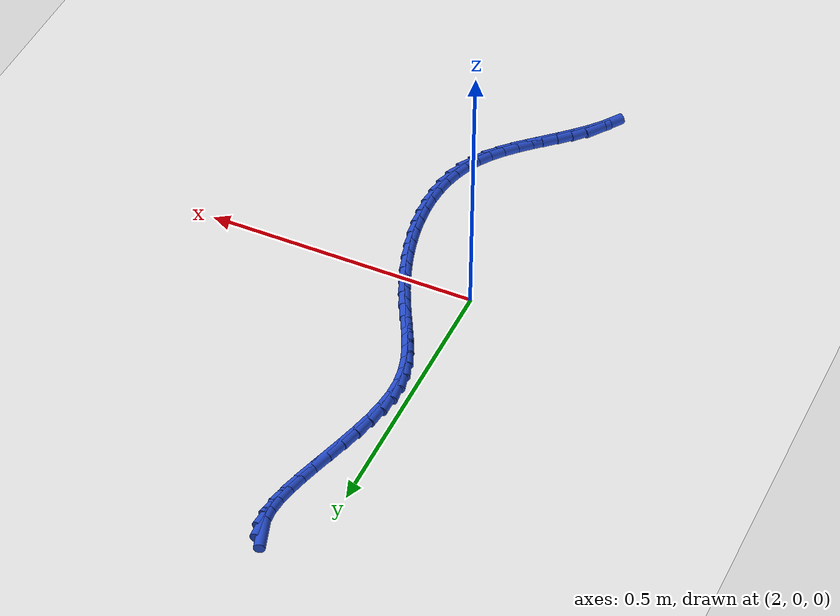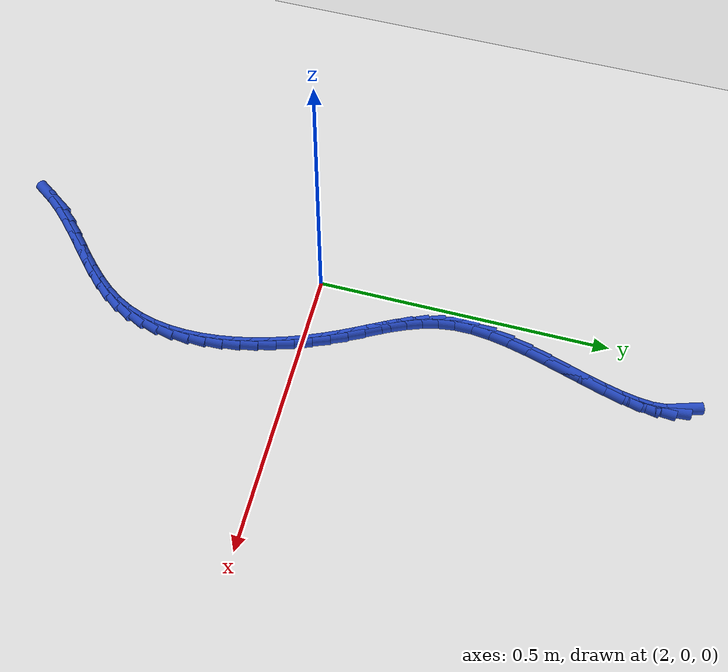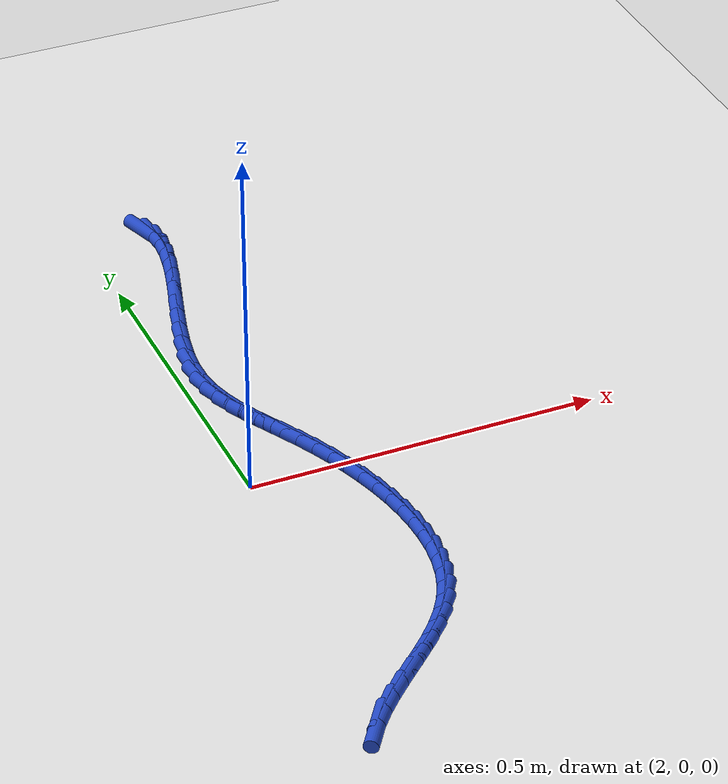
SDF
<sdf version="1.6">
 <world name="default">
  <model name="ground_plane">
   <static>1</static>
   <link name="link">
    <collision name="collision">
     <geometry><plane><normal>0 0 1</normal><size>100 100</size></plane></geometry>
     <surface><friction><ode><mu>100</mu><mu2>50</mu2></ode></friction></surface>
    </collision>
    <visual name="visual">
     <cast_shadows>0</cast_shadows>
     <geometry><plane><normal>0 0 1</normal><size>100 100</size></plane></geometry>
     <material>
      <script><uri>file://media/materials/scripts/gazebo.material</uri><name>Gazebo/WhiteGlow</name></script>
     </material>
    </visual>
   </link>
  </model>
  <model name="line">
   <link name="link_107">
    <pose>2.0880190392237843 0.6252387677299079 0.01 0 1.57 -1.2587852311825056</pose>
    <collision name="collision">
     <geometry><cylinder><radius>0.01</radius><length>0.08</length></cylinder></geometry>
    </collision>
    <visual name="visual">
     <material>
      <script><name>Gazebo/Blue</name><uri>file://media/materials/scripts/gazebo.material</uri></script>
     </material>
     <geometry><cylinder><radius>0.01</radius><length>0.08</length></cylinder></geometry>
    </visual>
   </link>
   <link name="link_108">
    <pose>2.0941675591977815 0.6061763316132448 0.01 0 1.57 -1.496260147466086</pose>
    <collision name="collision">
     <geometry><cylinder><radius>0.01</radius><length>0.08</length></cylinder></geometry>
    </collision>
    <visual name="visual">
     <material>
      <script><name>Gazebo/Blue</name><uri>file://media/materials/scripts/gazebo.material</uri></script>
     </material>
     <geometry><cylinder><radius>0.01</radius><length>0.08</length></cylinder></geometry>
    </visual>
   </link>
   <link name="link_109">
    <pose>2.095848326991795 0.5836684156684594 0.01 0 1.57 1.4899976681386353</pose>
    <collision name="collision">
     <geometry><cylinder><radius>0.01</radius><length>0.08</length></cylinder></geometry>
    </collision>
    <visual name="visual">
     <material>
      <script><name>Gazebo/Blue</name><uri>file://media/materials/scripts/gazebo.material</uri></script>
     </material>
     <geometry><cylinder><radius>0.01</radius><length>0.08</length></cylinder></geometry>
    </visual>
   </link>
   <link name="link_110">
    <pose>2.0937843487172287 0.5581793191307455 0.01 0 1.57 1.3911598199942214</pose>
    <collision name="collision">
     <geometry><cylinder><radius>0.01</radius><length>0.08</length></cylinder></geometry>
    </collision>
    <visual name="visual">
     <material>
      <script><name>Gazebo/Blue</name><uri>file://media/materials/scripts/gazebo.material</uri></script>
     </material>
     <geometry><cylinder><radius>0.01</radius><length>0.08</length></cylinder></geometry>
    </visual>
   </link>
   <link name="link_111">
    <pose>2.0886986304854895 0.5301733412352979 0.01 0 1.57 1.3298981695008079</pose>
    <collision name="collision">
     <geometry><cylinder><radius>0.01</radius><length>0.08</length></cylinder></geometry>
    </collision>
    <visual name="visual">
     <material>
      <script><name>Gazebo/Blue</name><uri>file://media/materials/scripts/gazebo.material</uri></script>
     </material>
     <geometry><cylinder><radius>0.01</radius><length>0.08</length></cylinder></geometry>
    </visual>
   </link>
   <link name="link_112">
    <pose>2.081314178407981 0.5001147812173106 0.01 0 1.57 1.2948872720781126</pose>
    <collision name="collision">
     <geometry><cylinder><radius>0.01</radius><length>0.08</length></cylinder></geometry>
    </collision>
    <visual name="visual">
     <material>
      <script><name>Gazebo/Blue</name><uri>file://media/materials/scripts/gazebo.material</uri></script>
     </material>
     <geometry><cylinder><radius>0.01</radius><length>0.08</length></cylinder></geometry>
    </visual>
   </link>
   <link name="link_113">
    <pose>2.07235399859611 0.46846793831197747 0.01 0 1.57 1.2798532292639366</pose>
    <collision name="collision">
     <geometry><cylinder><radius>0.01</radius><length>0.08</length></cylinder></geometry>
    </collision>
    <visual name="visual">
     <material>
      <script><name>Gazebo/Blue</name><uri>file://media/materials/scripts/gazebo.material</uri></script>
     </material>
     <geometry><cylinder><radius>0.01</radius><length>0.08</length></cylinder></geometry>
    </visual>
   </link>
   <link name="link_114">
    <pose>2.0625410971612808 0.43569711175449294 0.01 0 1.57 1.2817160319039076</pose>
    <collision name="collision">
     <geometry><cylinder><radius>0.01</radius><length>0.08</length></cylinder></geometry>
    </collision>
    <visual name="visual">
     <material>
      <script><name>Gazebo/Blue</name><uri>file://media/materials/scripts/gazebo.material</uri></script>
     </material>
     <geometry><cylinder><radius>0.01</radius><length>0.08</length></cylinder></geometry>
    </visual>
   </link>
   <link name="link_115">
    <pose>2.0525984802148995 0.40226660078005055 0.01 0 1.57 1.2996065464672446</pose>
    <collision name="collision">
     <geometry><cylinder><radius>0.01</radius><length>0.08</length></cylinder></geometry>
    </collision>
    <visual name="visual">
     <material>
      <script><name>Gazebo/Blue</name><uri>file://media/materials/scripts/gazebo.material</uri></script>
     </material>
     <geometry><cylinder><radius>0.01</radius><length>0.08</length></cylinder></geometry>
    </visual>
   </link>
   <link name="link_116">
    <pose>2.0432491538683704 0.3686407046238454 0.01 0 1.57 1.3344761159336342</pose>
    <collision name="collision">
     <geometry><cylinder><radius>0.01</radius><length>0.08</length></cylinder></geometry>
    </collision>
    <visual name="visual">
     <material>
      <script><name>Gazebo/Blue</name><uri>file://media/materials/scripts/gazebo.material</uri></script>
     </material>
     <geometry><cylinder><radius>0.01</radius><length>0.08</length></cylinder></geometry>
    </visual>
   </link>
   <link name="link_117">
    <pose>2.0352161242331 0.3352837225210713 0.01 0 1.57 1.3890998755547987</pose>
    <collision name="collision">
     <geometry><cylinder><radius>0.01</radius><length>0.08</length></cylinder></geometry>
    </collision>
    <visual name="visual">
     <material>
      <script><name>Gazebo/Blue</name><uri>file://media/materials/scripts/gazebo.material</uri></script>
     </material>
     <geometry><cylinder><radius>0.01</radius><length>0.08</length></cylinder></geometry>
    </visual>
   </link>
   <link name="link_118">
    <pose>2.0292223974204924 0.3026599537069217 0.01 0 1.57 1.468331022291689</pose>
    <collision name="collision">
     <geometry><cylinder><radius>0.01</radius><length>0.08</length></cylinder></geometry>
    </collision>
    <visual name="visual">
     <material>
      <script><name>Gazebo/Blue</name><uri>file://media/materials/scripts/gazebo.material</uri></script>
     </material>
     <geometry><cylinder><radius>0.01</radius><length>0.08</length></cylinder></geometry>
    </visual>
   </link>
   <link name="link_119">
    <pose>2.0259909795419535 0.2712336974165918 0.01 0 1.57 -1.5626328180973974</pose>
    <collision name="collision">
     <geometry><cylinder><radius>0.01</radius><length>0.08</length></cylinder></geometry>
    </collision>
    <visual name="visual">
     <material>
      <script><name>Gazebo/Blue</name><uri>file://media/materials/scripts/gazebo.material</uri></script>
     </material>
     <geometry><cylinder><radius>0.01</radius><length>0.08</length></cylinder></geometry>
    </visual>
   </link>
   <link name="link_120">
    <pose>2.0262340239057957 0.24146231188057965 0.01 0 1.57 -1.432240706068851</pose>
    <collision name="collision">
     <geometry><cylinder><radius>0.01</radius><length>0.08</length></cylinder></geometry>
    </collision>
    <visual name="visual">
     <material>
      <script><name>Gazebo/Blue</name><uri>file://media/materials/scripts/gazebo.material</uri></script>
     </material>
     <geometry><cylinder><radius>0.01</radius><length>0.08</length></cylinder></geometry>
    </visual>
   </link>
   <link name="link_121">
    <pose>2.0301379566894373 0.21346692196619366 0.01 0 1.57 -1.313221443128833</pose>
    <collision name="collision">
     <geometry><cylinder><radius>0.01</radius><length>0.08</length></cylinder></geometry>
    </collision>
    <visual name="visual">
     <material>
      <script><name>Gazebo/Blue</name><uri>file://media/materials/scripts/gazebo.material</uri></script>
     </material>
     <geometry><cylinder><radius>0.01</radius><length>0.08</length></cylinder></geometry>
    </visual>
   </link>
   <link name="link_122">
    <pose>2.037139277039475 0.18688903017981726 0.01 0 1.57 -1.215654488537732</pose>
    <collision name="collision">
     <geometry><cylinder><radius>0.01</radius><length>0.08</length></cylinder></geometry>
    </collision>
    <visual name="visual">
     <material>
      <script><name>Gazebo/Blue</name><uri>file://media/materials/scripts/gazebo.material</uri></script>
     </material>
     <geometry><cylinder><radius>0.01</radius><length>0.08</length></cylinder></geometry>
    </visual>
   </link>
   <link name="link_123">
    <pose>2.0466170103716848 0.1613333812029592 0.01 0 1.57 -1.144103609029195</pose>
    <collision name="collision">
     <geometry><cylinder><radius>0.01</radius><length>0.08</length></cylinder></geometry>
    </collision>
    <visual name="visual">
     <material>
      <script><name>Gazebo/Blue</name><uri>file://media/materials/scripts/gazebo.material</uri></script>
     </material>
     <geometry><cylinder><radius>0.01</radius><length>0.08</length></cylinder></geometry>
    </visual>
   </link>
   <link name="link_124">
    <pose>2.0579501821018398 0.1364047197171291 0.01 0 1.57 -1.100074413535984</pose>
    <collision name="collision">
     <geometry><cylinder><radius>0.01</radius><length>0.08</length></cylinder></geometry>
    </collision>
    <visual name="visual">
     <material>
      <script><name>Gazebo/Blue</name><uri>file://media/materials/scripts/gazebo.material</uri></script>
     </material>
     <geometry><cylinder><radius>0.01</radius><length>0.08</length></cylinder></geometry>
    </visual>
   </link>
   <link name="link_125">
    <pose>2.0705178176457157 0.11170779040383577 0.01 0 1.57 -1.0832780757986833</pose>
    <collision name="collision">
     <geometry><cylinder><radius>0.01</radius><length>0.08</length></cylinder></geometry>
    </collision>
    <visual name="visual">
     <material>
      <script><name>Gazebo/Blue</name><uri>file://media/materials/scripts/gazebo.material</uri></script>
     </material>
     <geometry><cylinder><radius>0.01</radius><length>0.08</length></cylinder></geometry>
    </visual>
   </link>
   <link name="link_126">
    <pose>2.0836989424190904 0.08684733794458785 0.01 0 1.57 -1.092651726121807</pose>
    <collision name="collision">
     <geometry><cylinder><radius>0.01</radius><length>0.08</length></cylinder></geometry>
    </collision>
    <visual name="visual">
     <material>
      <script><name>Gazebo/Blue</name><uri>file://media/materials/scripts/gazebo.material</uri></script>
     </material>
     <geometry><cylinder><radius>0.01</radius><length>0.08</length></cylinder></geometry>
    </visual>
   </link>
   <link name="link_127">
    <pose>2.0968725818377347 0.061428107020895045 0.01 0 1.57 -1.125273541851513</pose>
    <collision name="collision">
     <geometry><cylinder><radius>0.01</radius><length>0.08</length></cylinder></geometry>
    </collision>
    <visual name="visual">
     <material>
      <script><name>Gazebo/Blue</name><uri>file://media/materials/scripts/gazebo.material</uri></script>
     </material>
     <geometry><cylinder><radius>0.01</radius><length>0.08</length></cylinder></geometry>
    </visual>
   </link>
   <link name="link_128">
    <pose>2.109448469428035 0.035093651847065616 0.01 0 1.57 -1.1663704017053962</pose>
    <collision name="collision">
     <geometry><cylinder><radius>0.01</radius><length>0.08</length></cylinder></geometry>
    </collision>
    <visual name="visual">
     <material>
      <script><name>Gazebo/Blue</name><uri>file://media/materials/scripts/gazebo.material</uri></script>
     </material>
     <geometry><cylinder><radius>0.01</radius><length>0.08</length></cylinder></geometry>
    </visual>
   </link>
   <link name="link_129">
    <pose>2.1211141609240114 0.00783864397630823 0.01 0 1.57 -1.2091213461065216</pose>
    <collision name="collision">
     <geometry><cylinder><radius>0.01</radius><length>0.08</length></cylinder></geometry>
    </collision>
    <visual name="visual">
     <material>
      <script><name>Gazebo/Blue</name><uri>file://media/materials/scripts/gazebo.material</uri></script>
     </material>
     <geometry><cylinder><radius>0.01</radius><length>0.08</length></cylinder></geometry>
    </visual>
   </link>
   <link name="link_130">
    <pose>2.1317048586459806 -0.02015564628884714 0.01 0 1.57 -1.2542430474106667</pose>
    <collision name="collision">
     <geometry><cylinder><radius>0.01</radius><length>0.08</length></cylinder></geometry>
    </collision>
    <visual name="visual">
     <material>
      <script><name>Gazebo/Blue</name><uri>file://media/materials/scripts/gazebo.material</uri></script>
     </material>
     <geometry><cylinder><radius>0.01</radius><length>0.08</length></cylinder></geometry>
    </visual>
   </link>
   <link name="link_131">
    <pose>2.1410571292225806 -0.048706224405354735 0.01 0 1.57 -1.3025475879053245</pose>
    <collision name="collision">
     <geometry><cylinder><radius>0.01</radius><length>0.08</length></cylinder></geometry>
    </collision>
    <visual name="visual">
     <material>
      <script><name>Gazebo/Blue</name><uri>file://media/materials/scripts/gazebo.material</uri></script>
     </material>
     <geometry><cylinder><radius>0.01</radius><length>0.08</length></cylinder></geometry>
    </visual>
   </link>
   <link name="link_132">
    <pose>2.1490075392824486 -0.07763009583016882 0.01 0 1.57 -1.3549013950454287</pose>
    <collision name="collision">
     <geometry><cylinder><radius>0.01</radius><length>0.08</length></cylinder></geometry>
    </collision>
    <visual name="visual">
     <material>
      <script><name>Gazebo/Blue</name><uri>file://media/materials/scripts/gazebo.material</uri></script>
     </material>
     <geometry><cylinder><radius>0.01</radius><length>0.08</length></cylinder></geometry>
    </visual>
   </link>
   <link name="link_133">
    <pose>2.1553926554542224 -0.10674426602024449 0.01 0 1.57 -1.412243085065625</pose>
    <collision name="collision">
     <geometry><cylinder><radius>0.01</radius><length>0.08</length></cylinder></geometry>
    </collision>
    <visual name="visual">
     <material>
      <script><name>Gazebo/Blue</name><uri>file://media/materials/scripts/gazebo.material</uri></script>
     </material>
     <geometry><cylinder><radius>0.01</radius><length>0.08</length></cylinder></geometry>
    </visual>
   </link>
   <link name="link_134">
    <pose>2.1600490443665383 -0.1358657404325343 0.01 0 1.57 -1.4755882978108505</pose>
    <collision name="collision">
     <geometry><cylinder><radius>0.01</radius><length>0.08</length></cylinder></geometry>
    </collision>
    <visual name="visual">
     <material>
      <script><name>Gazebo/Blue</name><uri>file://media/materials/scripts/gazebo.material</uri></script>
     </material>
     <geometry><cylinder><radius>0.01</radius><length>0.08</length></cylinder></geometry>
    </visual>
   </link>
   <link name="link_135">
    <pose>2.162813272648035 -0.16481152452399334 0.01 0 1.57 -1.546012798351729</pose>
    <collision name="collision">
     <geometry><cylinder><radius>0.01</radius><length>0.08</length></cylinder></geometry>
    </collision>
    <visual name="visual">
     <material>
      <script><name>Gazebo/Blue</name><uri>file://media/materials/scripts/gazebo.material</uri></script>
     </material>
     <geometry><cylinder><radius>0.01</radius><length>0.08</length></cylinder></geometry>
    </visual>
   </link>
   <link name="link_136">
    <pose>2.1635219069273486 -0.19339862375157588 0.01 0 1.57 1.5169930534685085</pose>
    <collision name="collision">
     <geometry><cylinder><radius>0.01</radius><length>0.08</length></cylinder></geometry>
    </collision>
    <visual name="visual">
     <material>
      <script><name>Gazebo/Blue</name><uri>file://media/materials/scripts/gazebo.material</uri></script>
     </material>
     <geometry><cylinder><radius>0.01</radius><length>0.08</length></cylinder></geometry>
    </visual>
   </link>
   <link name="link_137">
    <pose>2.1620115138331175 -0.22144404357223618 0.01 0 1.57 1.4292619333148358</pose>
    <collision name="collision">
     <geometry><cylinder><radius>0.01</radius><length>0.08</length></cylinder></geometry>
    </collision>
    <visual name="visual">
     <material>
      <script><name>Gazebo/Blue</name><uri>file://media/materials/scripts/gazebo.material</uri></script>
     </material>
     <geometry><cylinder><radius>0.01</radius><length>0.08</length></cylinder></geometry>
    </visual>
   </link>
   <link name="link_138">
    <pose>2.1581186599939777 -0.2487647894429285 0.01 0 1.57 1.3316885869155342</pose>
    <collision name="collision">
     <geometry><cylinder><radius>0.01</radius><length>0.08</length></cylinder></geometry>
    </collision>
    <visual name="visual">
     <material>
      <script><name>Gazebo/Blue</name><uri>file://media/materials/scripts/gazebo.material</uri></script>
     </material>
     <geometry><cylinder><radius>0.01</radius><length>0.08</length></cylinder></geometry>
    </visual>
   </link>
   <link name="link_139">
    <pose>2.151679912038568 -0.27517786682060713 0.01 0 1.57 1.2241222608130218</pose>
    <collision name="collision">
     <geometry><cylinder><radius>0.01</radius><length>0.08</length></cylinder></geometry>
    </collision>
    <visual name="visual">
     <material>
      <script><name>Gazebo/Blue</name><uri>file://media/materials/scripts/gazebo.material</uri></script>
     </material>
     <geometry><cylinder><radius>0.01</radius><length>0.08</length></cylinder></geometry>
    </visual>
   </link>
   <link name="link_140">
    <pose>2.142531836595524 -0.30050028116222693 0.01 0 1.57 1.107266554667919</pose>
    <collision name="collision">
     <geometry><cylinder><radius>0.01</radius><length>0.08</length></cylinder></geometry>
    </collision>
    <visual name="visual">
     <material>
      <script><name>Gazebo/Blue</name><uri>file://media/materials/scripts/gazebo.material</uri></script>
     </material>
     <geometry><cylinder><radius>0.01</radius><length>0.08</length></cylinder></geometry>
    </visual>
   </link>
   <link name="link_141">
    <pose>2.130511000293485 -0.3245490379247408 0.01 0 1.57 0.9879342824581835</pose>
    <collision name="collision">
     <geometry><cylinder><radius>0.01</radius><length>0.08</length></cylinder></geometry>
    </collision>
    <visual name="visual">
     <material>
      <script><name>Gazebo/Blue</name><uri>file://media/materials/scripts/gazebo.material</uri></script>
     </material>
     <geometry><cylinder><radius>0.01</radius><length>0.08</length></cylinder></geometry>
    </visual>
   </link>
   <link name="link_142">
    <pose>2.115570360236326 -0.3472115504524049 0.01 0 1.57 0.8898782830486108</pose>
    <collision name="collision">
     <geometry><cylinder><radius>0.01</radius><length>0.08</length></cylinder></geometry>
    </collision>
    <visual name="visual">
     <material>
      <script><name>Gazebo/Blue</name><uri>file://media/materials/scripts/gazebo.material</uri></script>
     </material>
     <geometry><cylinder><radius>0.01</radius><length>0.08</length></cylinder></geometry>
    </visual>
   </link>
   <link name="link_143">
    <pose>2.098173628298968 -0.3686842020828009 0.01 0 1.57 0.8184119102904708</pose>
    <collision name="collision">
     <geometry><cylinder><radius>0.01</radius><length>0.08</length></cylinder></geometry>
    </collision>
    <visual name="visual">
     <material>
      <script><name>Gazebo/Blue</name><uri>file://media/materials/scripts/gazebo.material</uri></script>
     </material>
     <geometry><cylinder><radius>0.01</radius><length>0.08</length></cylinder></geometry>
    </visual>
   </link>
   <link name="link_144">
    <pose>2.0789245788738597 -0.38924810392809145 0.01 0 1.57 0.7715165468856282</pose>
    <collision name="collision">
     <geometry><cylinder><radius>0.01</radius><length>0.08</length></cylinder></geometry>
    </collision>
    <visual name="visual">
     <material>
      <script><name>Gazebo/Blue</name><uri>file://media/materials/scripts/gazebo.material</uri></script>
     </material>
     <geometry><cylinder><radius>0.01</radius><length>0.08</length></cylinder></geometry>
    </visual>
   </link>
   <link name="link_145">
    <pose>2.0584269901130363 -0.40918436937471675 0.01 0 1.57 0.7472990596706637</pose>
    <collision name="collision">
     <geometry><cylinder><radius>0.01</radius><length>0.08</length></cylinder></geometry>
    </collision>
    <visual name="visual">
     <material>
      <script><name>Gazebo/Blue</name><uri>file://media/materials/scripts/gazebo.material</uri></script>
     </material>
     <geometry><cylinder><radius>0.01</radius><length>0.08</length></cylinder></geometry>
    </visual>
   </link>
   <link name="link_146">
    <pose>2.037284640168527 -0.4287741118091165 0.01 0 1.57 0.7446667046318836</pose>
    <collision name="collision">
     <geometry><cylinder><radius>0.01</radius><length>0.08</length></cylinder></geometry>
    </collision>
    <visual name="visual">
     <material>
      <script><name>Gazebo/Blue</name><uri>file://media/materials/scripts/gazebo.material</uri></script>
     </material>
     <geometry><cylinder><radius>0.01</radius><length>0.08</length></cylinder></geometry>
    </visual>
   </link>
   <link name="link_147">
    <pose>2.016101307192367 -0.44829844461773083 0.01 0 1.57 0.7635857473813032</pose>
    <collision name="collision">
     <geometry><cylinder><radius>0.01</radius><length>0.08</length></cylinder></geometry>
    </collision>
    <visual name="visual">
     <material>
      <script><name>Gazebo/Blue</name><uri>file://media/materials/scripts/gazebo.material</uri></script>
     </material>
     <geometry><cylinder><radius>0.01</radius><length>0.08</length></cylinder></geometry>
    </visual>
   </link>
   <link name="link_148">
    <pose>1.995480769336587 -0.46803848118699953 0.01 0 1.57 0.8051202971060396</pose>
    <collision name="collision">
     <geometry><cylinder><radius>0.01</radius><length>0.08</length></cylinder></geometry>
    </collision>
    <visual name="visual">
     <material>
      <script><name>Gazebo/Blue</name><uri>file://media/materials/scripts/gazebo.material</uri></script>
     </material>
     <geometry><cylinder><radius>0.01</radius><length>0.08</length></cylinder></geometry>
    </visual>
   </link>
   <link name="link_149">
    <pose>1.9760268047532195 -0.4882753349033633 0.01 0 1.57 0.8712668273026094</pose>
    <collision name="collision">
     <geometry><cylinder><radius>0.01</radius><length>0.08</length></cylinder></geometry>
    </collision>
    <visual name="visual">
     <material>
      <script><name>Gazebo/Blue</name><uri>file://media/materials/scripts/gazebo.material</uri></script>
     </material>
     <geometry><cylinder><radius>0.01</radius><length>0.08</length></cylinder></geometry>
    </visual>
   </link>
   <link name="link_150">
    <pose>1.9583431915942986 -0.509290119153261 0.01 0 1.57 0.9644068436923869</pose>
    <collision name="collision">
     <geometry><cylinder><radius>0.01</radius><length>0.08</length></cylinder></geometry>
    </collision>
    <visual name="visual">
     <material>
      <script><name>Gazebo/Blue</name><uri>file://media/materials/scripts/gazebo.material</uri></script>
     </material>
     <geometry><cylinder><radius>0.01</radius><length>0.08</length></cylinder></geometry>
    </visual>
   </link>
  </model>
 </world>
</sdf>
